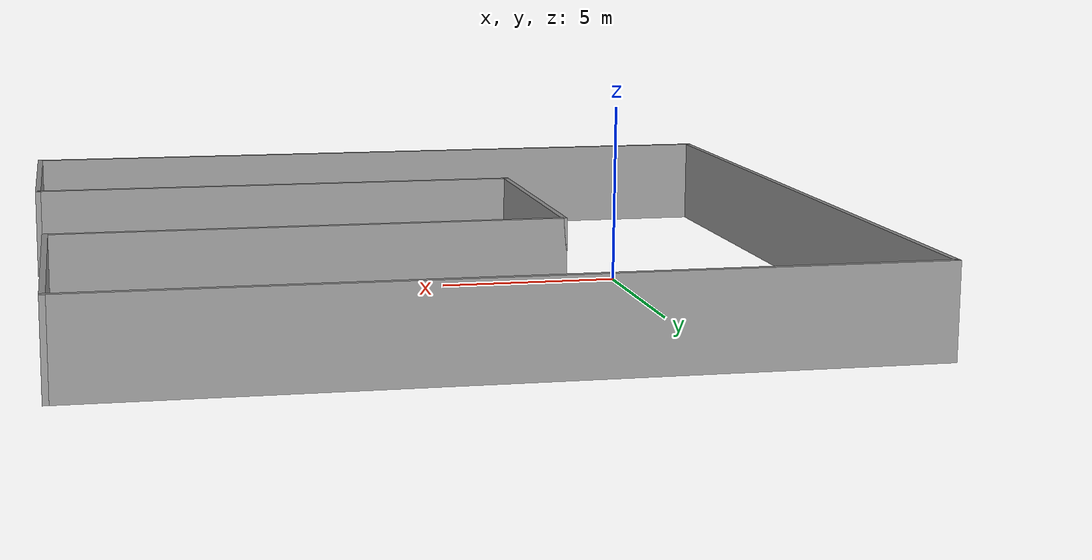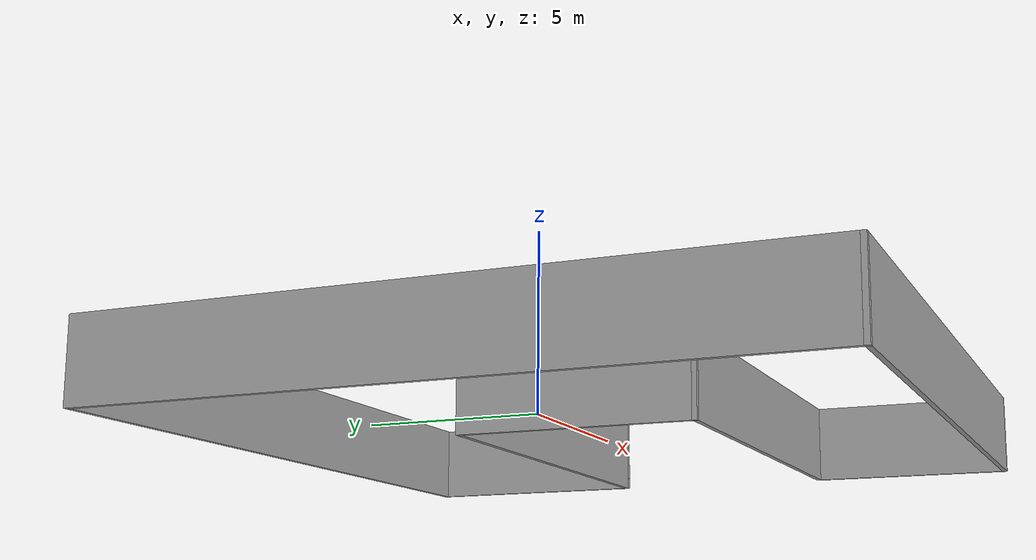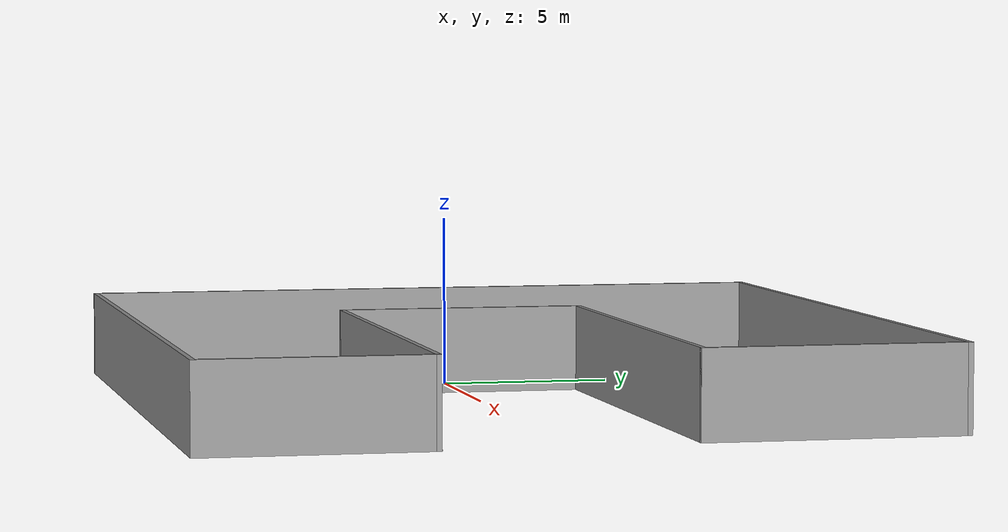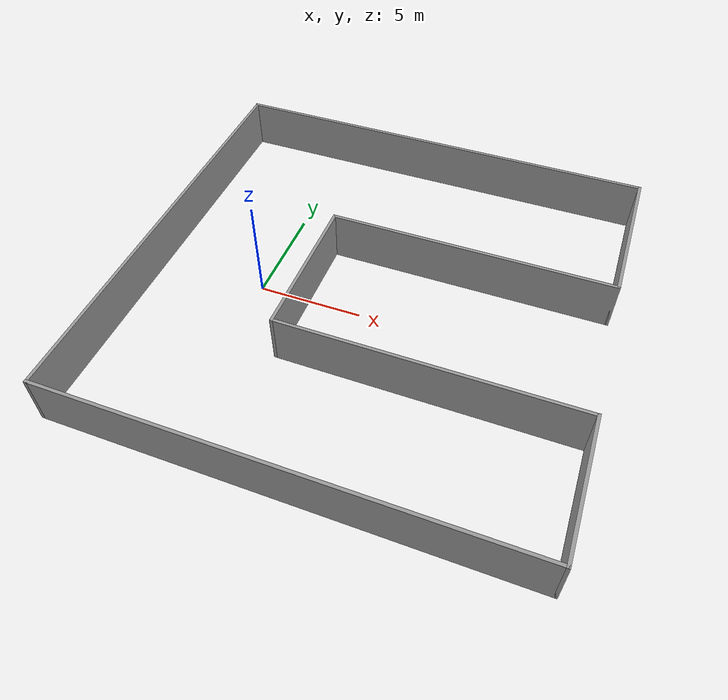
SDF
<?xml version='1.0'?>
<sdf version='1.6'>
  <model name='simple_building'>
    <pose frame=''>5.45128 0.488002 0 0 -0 0</pose>
    <link name='Wall_18'>
      <collision name='Wall_18_Collision'>
        <geometry>
          <box>
            <size>21.75 0.15 2.5</size>
          </box>
        </geometry>
        <pose frame=''>0 0 1.25 0 -0 0</pose>
      </collision>
      <visual name='Wall_18_Visual'>
        <pose frame=''>0 0 1.25 0 -0 0</pose>
        <geometry>
          <box>
            <size>21.75 0.15 2.5</size>
          </box>
        </geometry>
        <material>
          <script>
            <uri>file://media/materials/scripts/gazebo.material</uri>
            <name>Gazebo/Grey</name>
          </script>
          <ambient>1 1 1 1</ambient>
        </material>
        <meta>
          <layer>0</layer>
        </meta>
      </visual>
      <pose frame=''>0 -10.4 0 0 -0 0</pose>
    </link>
    <link name='Wall_19'>
      <collision name='Wall_19_Collision'>
        <geometry>
          <box>
            <size>6.5 0.15 2.5</size>
          </box>
        </geometry>
        <pose frame=''>0 0 1.25 0 -0 0</pose>
      </collision>
      <visual name='Wall_19_Visual'>
        <pose frame=''>0 0 1.25 0 -0 0</pose>
        <geometry>
          <box>
            <size>6.5 0.15 2.5</size>
          </box>
        </geometry>
        <material>
          <script>
            <uri>file://media/materials/scripts/gazebo.material</uri>
            <name>Gazebo/Grey</name>
          </script>
          <ambient>1 1 1 1</ambient>
        </material>
        <meta>
          <layer>0</layer>
        </meta>
      </visual>
      <pose frame=''>10.8 -7.225 0 0 -0 1.5708</pose>
    </link>
    <link name='Wall_20'>
      <collision name='Wall_20_Collision'>
        <geometry>
          <box>
            <size>14 0.15 2.5</size>
          </box>
        </geometry>
        <pose frame=''>0 0 1.25 0 -0 0</pose>
      </collision>
      <visual name='Wall_20_Visual'>
        <pose frame=''>0 0 1.25 0 -0 0</pose>
        <geometry>
          <box>
            <size>14 0.15 2.5</size>
          </box>
        </geometry>
        <material>
          <script>
            <uri>file://media/materials/scripts/gazebo.material</uri>
            <name>Gazebo/Grey</name>
          </script>
          <ambient>1 1 1 1</ambient>
        </material>
        <meta>
          <layer>0</layer>
        </meta>
      </visual>
      <pose frame=''>3.875 -4.05 0 0 -0 3.14159</pose>
    </link>
    <link name='Wall_21'>
      <collision name='Wall_21_Collision'>
        <geometry>
          <box>
            <size>7.25 0.15 2.5</size>
          </box>
        </geometry>
        <pose frame=''>0 0 1.25 0 -0 0</pose>
      </collision>
      <visual name='Wall_21_Visual'>
        <pose frame=''>0 0 1.25 0 -0 0</pose>
        <geometry>
          <box>
            <size>7.25 0.15 2.5</size>
          </box>
        </geometry>
        <material>
          <script>
            <uri>file://media/materials/scripts/gazebo.material</uri>
            <name>Gazebo/Grey</name>
          </script>
          <ambient>1 1 1 1</ambient>
        </material>
        <meta>
          <layer>0</layer>
        </meta>
      </visual>
      <pose frame=''>-3.05 -0.5 0 0 -0 1.5708</pose>
    </link>
    <link name='Wall_22'>
      <collision name='Wall_22_Collision'>
        <geometry>
          <box>
            <size>13.75 0.15 2.5</size>
          </box>
        </geometry>
        <pose frame=''>0 0 1.25 0 -0 0</pose>
      </collision>
      <visual name='Wall_22_Visual'>
        <pose frame=''>0 0 1.25 0 -0 0</pose>
        <geometry>
          <box>
            <size>13.75 0.15 2.5</size>
          </box>
        </geometry>
        <material>
          <script>
            <uri>file://media/materials/scripts/gazebo.material</uri>
            <name>Gazebo/Grey</name>
          </script>
          <ambient>1 1 1 1</ambient>
        </material>
        <meta>
          <layer>0</layer>
        </meta>
      </visual>
      <pose frame=''>3.75 3.05 0 0 -0 0</pose>
    </link>
    <link name='Wall_23'>
      <collision name='Wall_23_Collision'>
        <geometry>
          <box>
            <size>7.5 0.15 2.5</size>
          </box>
        </geometry>
        <pose frame=''>0 0 1.25 0 -0 0</pose>
      </collision>
      <visual name='Wall_23_Visual'>
        <pose frame=''>0 0 1.25 0 -0 0</pose>
        <geometry>
          <box>
            <size>7.5 0.15 2.5</size>
          </box>
        </geometry>
        <material>
          <script>
            <uri>file://media/materials/scripts/gazebo.material</uri>
            <name>Gazebo/Grey</name>
          </script>
          <ambient>1 1 1 1</ambient>
        </material>
        <meta>
          <layer>0</layer>
        </meta>
      </visual>
      <pose frame=''>10.55 6.725 0 0 -0 1.5708</pose>
    </link>
    <link name='Wall_24'>
      <collision name='Wall_24_Collision'>
        <geometry>
          <box>
            <size>21.5 0.15 2.5</size>
          </box>
        </geometry>
        <pose frame=''>0 0 1.25 0 -0 0</pose>
      </collision>
      <visual name='Wall_24_Visual'>
        <pose frame=''>0 0 1.25 0 -0 0</pose>
        <geometry>
          <box>
            <size>21.5 0.15 2.5</size>
          </box>
        </geometry>
        <material>
          <script>
            <uri>file://media/materials/scripts/gazebo.material</uri>
            <name>Gazebo/Grey</name>
          </script>
          <ambient>1 1 1 1</ambient>
        </material>
        <meta>
          <layer>0</layer>
        </meta>
      </visual>
      <pose frame=''>-0.125 10.4 0 0 -0 3.14159</pose>
    </link>
    <link name='Wall_29'>
      <collision name='Wall_29_Collision'>
        <geometry>
          <box>
            <size>20.95 0.15 2.5</size>
          </box>
        </geometry>
        <pose frame=''>0 0 1.25 0 -0 0</pose>
      </collision>
      <visual name='Wall_29_Visual'>
        <pose frame=''>0 0 1.25 0 -0 0</pose>
        <geometry>
          <box>
            <size>20.95 0.15 2.5</size>
          </box>
        </geometry>
        <material>
          <script>
            <uri>file://media/materials/scripts/gazebo.material</uri>
            <name>Gazebo/Grey</name>
          </script>
          <ambient>1 1 1 1</ambient>
        </material>
        <meta>
          <layer>0</layer>
        </meta>
      </visual>
      <pose frame=''>-10.8 0 0 0 -0 1.5708</pose>
    </link>
    <static>1</static>
  </model>
</sdf>
